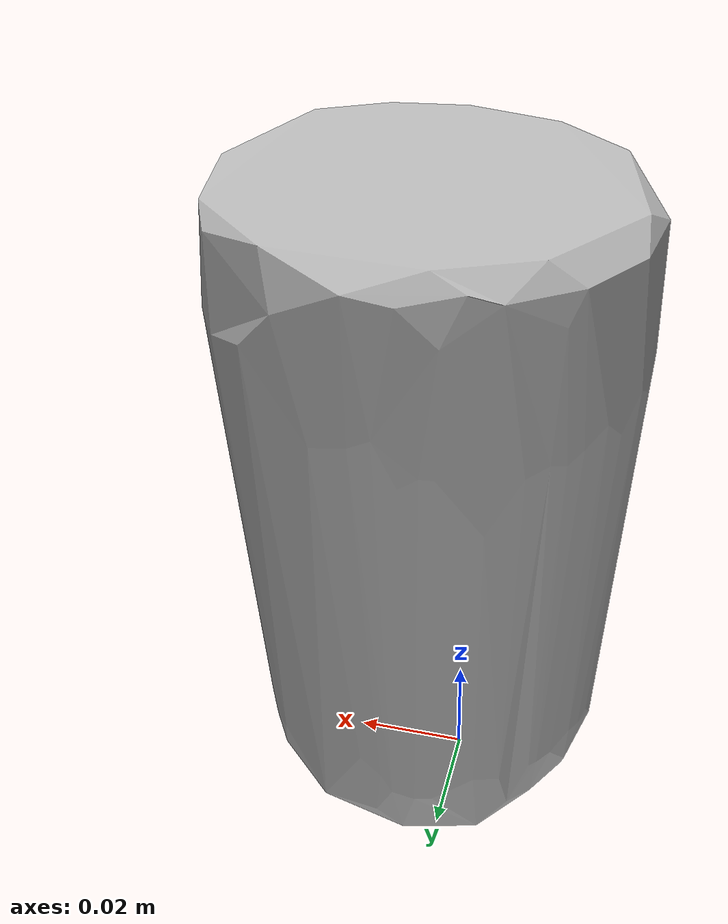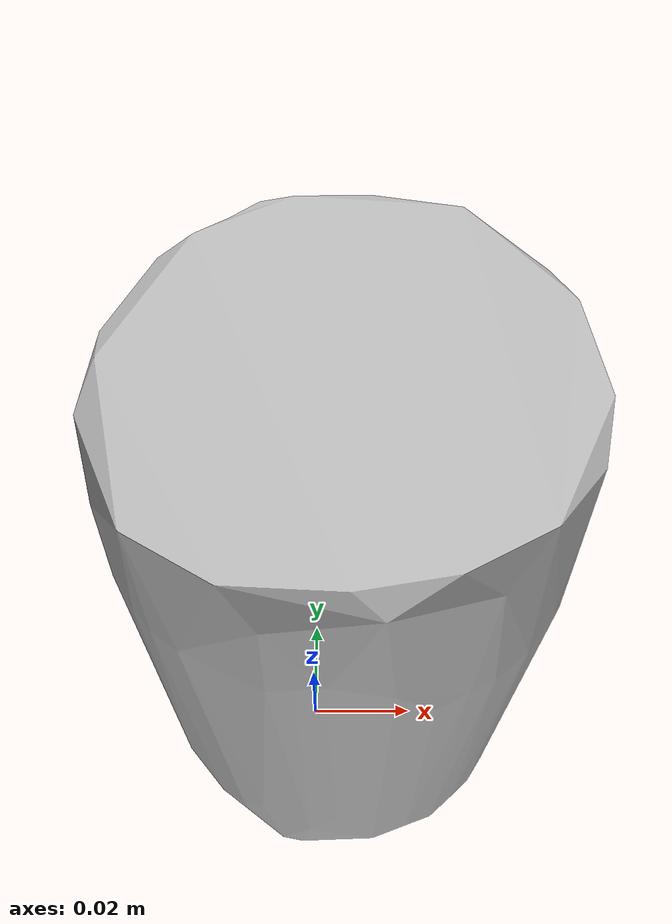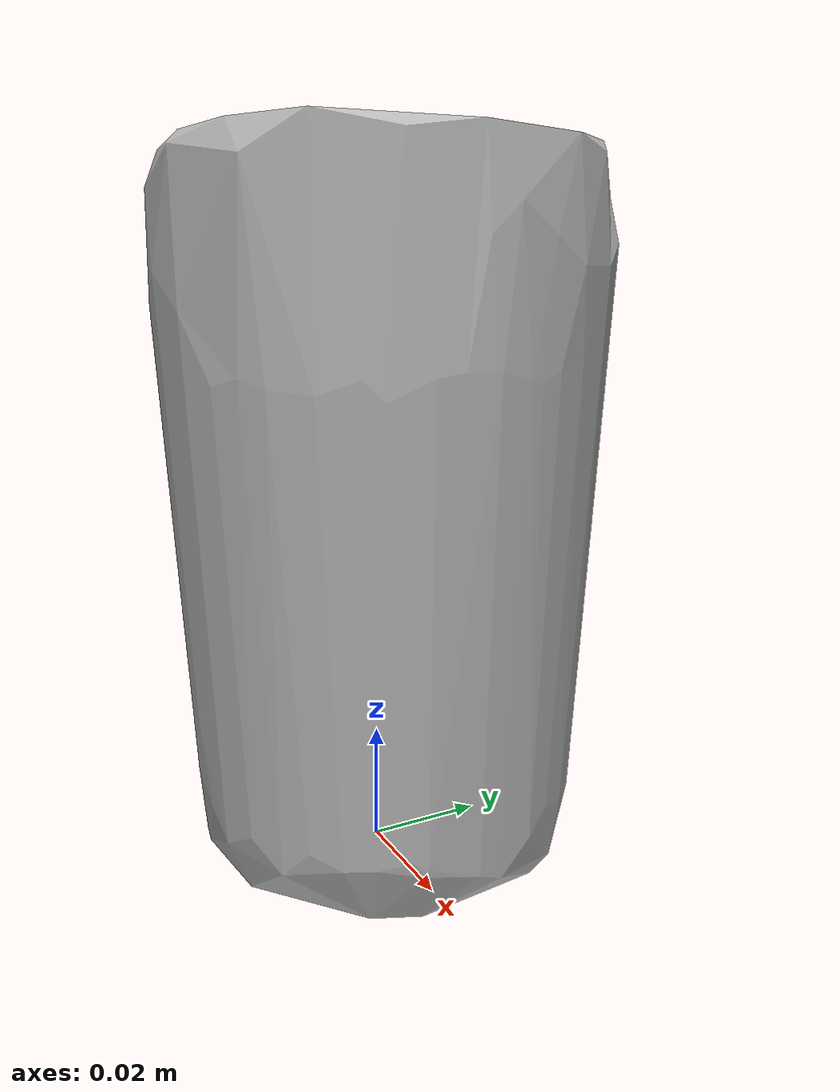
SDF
<?xml version='1.0'?>
<sdf version="1.4">
  <model name="campbells_soup_at_hand_creamy_tomato">
    <static>false</static>
    <link name="link">
      <inertial>
        <pose>0.005421196987074197 -0.0026760179720042164 0.06268279779864787 3.107497279692052 0.010427488698075976 -0.8114061880161663</pose>
        <mass>0.039711662220987716</mass>
        <inertia>
          <ixx>5.1327439855842035e-05</ixx>
          <ixy>1.1854698069814132e-20</ixy>
          <ixz>-1.0815679352837485e-20</ixz>
          <iyy>5.055634821971619e-05</iyy>
          <iyz>-1.5747483410562783e-20</iyz>
          <izz>2.2698754451516812e-05</izz>
        </inertia>
      </inertial>
      <collision name="collision">
        <geometry>
          <mesh>
            <!-- Use a downsampled mesh for collisions -->
            <uri>model:///campbells_soup_at_hand_creamy_tomato/campbells_soup_at_hand_creamy_tomato_250_collision.obj</uri>
	        </mesh>
        </geometry>
        <surface>
      </surface>
      </collision>
      <visual name="visual">
        <geometry>
          <mesh>
            <uri>model:///campbells_soup_at_hand_creamy_tomato/optimized_tsdf_texture_mapped_mesh.obj</uri>
	        </mesh>
        </geometry>
        <material>
          <script>
            <uri>model:///campbells_soup_at_hand_creamy_tomato/campbells_soup_at_hand_creamy_tomato.material</uri>
            <name>campbells_soup_at_hand_creamy_tomato</name>
          </script>
        </material>
      </visual>
    </link>
  </model>
</sdf>
